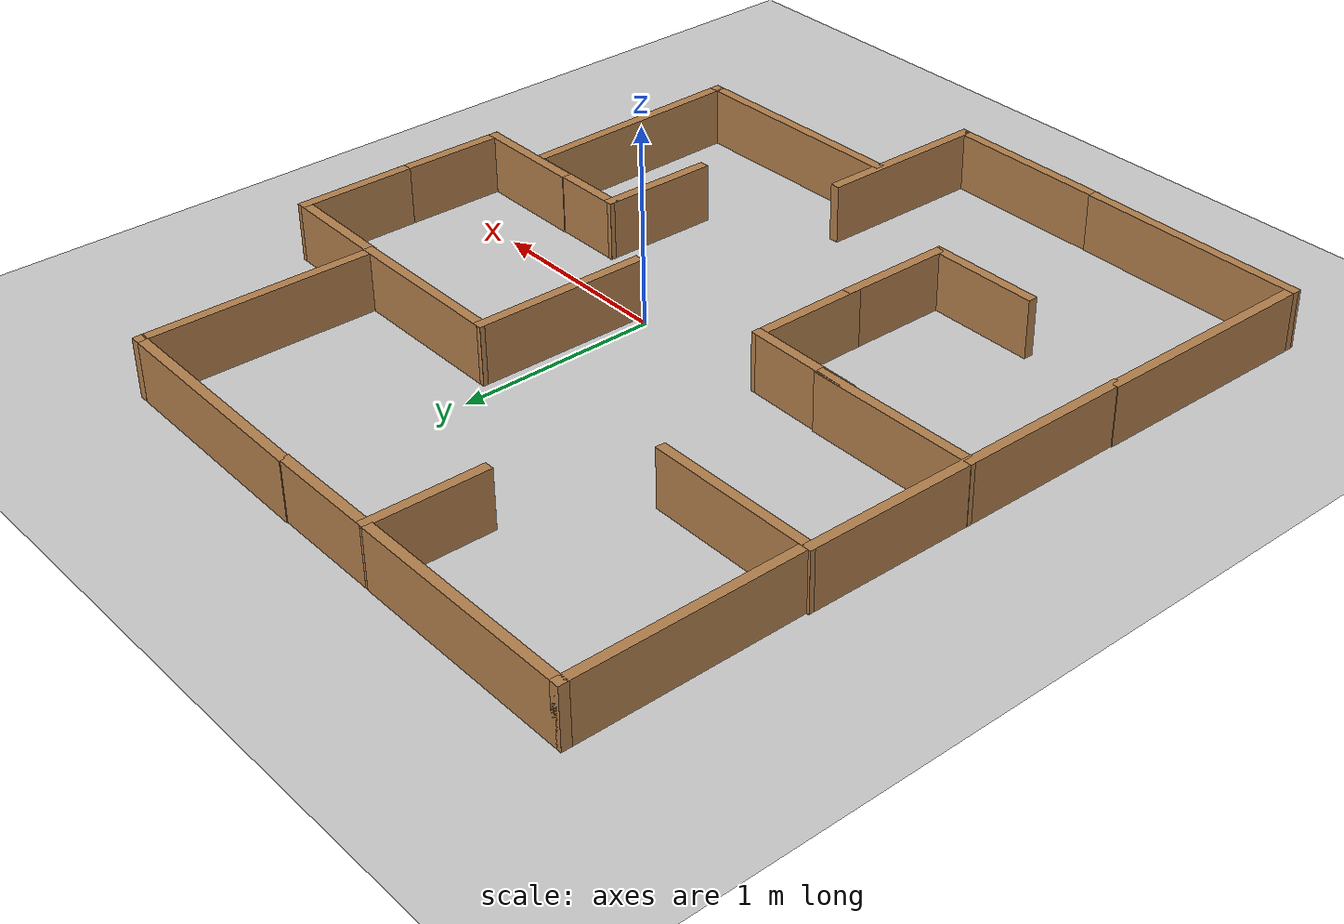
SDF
<sdf version="1.7">
 <world name="default">
  <light name="sun" type="directional">
   <pose>0 0 10 0 -0 0</pose>
   <diffuse>0.8 0.8 0.8 1</diffuse>
   <specular>0.2 0.2 0.2 1</specular>
   <attenuation>
    <range>1000</range>
    <constant>0.9</constant>
    <linear>0.01</linear>
    <quadratic>0.001</quadratic>
   </attenuation>
   <direction>-0.5 0.1 -0.9</direction>
   <spot><inner_angle>0</inner_angle><outer_angle>0</outer_angle><falloff>0</falloff></spot>
  </light>
  <model name="ground_plane">
   <static>1</static>
   <link name="link">
    <collision name="collision">
     <geometry><plane><normal>0 0 1</normal><size>100 100</size></plane></geometry>
     <surface>
      <contact><collide_bitmask>65535</collide_bitmask></contact>
      <friction><ode><mu>100</mu><mu2>50</mu2></ode></friction>
     </surface>
    </collision>
    <visual name="visual">
     <cast_shadows>0</cast_shadows>
     <geometry><plane><normal>0 0 1</normal><size>100 100</size></plane></geometry>
     <material>
      <script><uri>file://media/materials/scripts/gazebo.material</uri><name>Gazebo/Grey</name></script>
     </material>
    </visual>
   </link>
  </model>
  <gravity>0 0 -9.8</gravity>
  <magnetic_field>6e-06 2.3e-05 -4.2e-05</magnetic_field>
  <atmosphere type="adiabatic"/>
  <physics type="ode">
   <max_step_size>0.001</max_step_size>
   <real_time_factor>1</real_time_factor>
   <real_time_update_rate>1000</real_time_update_rate>
  </physics>
  <scene><ambient>0.4 0.4 0.4 1</ambient><background>0.7 0.7 0.7 1</background><shadows>1</shadows></scene>
  <spherical_coordinates>
   <surface_model>EARTH_WGS84</surface_model>
   <latitude_deg>0</latitude_deg>
   <longitude_deg>0</longitude_deg>
   <elevation>0</elevation>
   <heading_deg>0</heading_deg>
  </spherical_coordinates>
  <model name="corner120">
   <pose>-1.03557 3.29318 0 0 -0 0</pose>
   <link name="Wall_29">
    <collision name="Wall_29_Collision">
     <geometry><box><size>1.2087 0.05 0.3</size></box></geometry>
     <pose>0 0 0.15 0 -0 0</pose>
    </collision>
    <visual name="Wall_29_Visual">
     <pose>0 0 0.15 0 -0 0</pose>
     <geometry><box><size>1.2087 0.05 0.3</size></box></geometry>
     <material>
      <script><uri>file://media/materials/scripts/gazebo.material</uri><name>Gazebo/Wood</name></script>
      <ambient>1 1 1 1</ambient>
     </material>
     <meta><layer>0</layer></meta>
    </visual>
    <pose>-0.368152 -1.2825 0 0 -0 0</pose>
   </link>
   <link name="Wall_34">
    <collision name="Wall_34_Collision">
     <geometry><box><size>1.2 0.05 0.3</size></box></geometry>
     <pose>0 0 0.15 0 -0 0</pose>
    </collision>
    <visual name="Wall_34_Visual">
     <pose>0 0 0.15 0 -0 0</pose>
     <geometry><box><size>1.2 0.05 0.3</size></box></geometry>
     <material>
      <script><uri>file://media/materials/scripts/gazebo.material</uri><name>Gazebo/Wood</name></script>
      <ambient>1 1 1 1</ambient>
     </material>
     <meta><layer>0</layer></meta>
    </visual>
    <pose>-0.9475 -1.8575 0 0 -0 -1.5708</pose>
   </link>
   <static>1</static>
  </model>
  <model name="corner90">
   <pose>-1.05693 2.27449 0 0 -0 0</pose>
   <link name="Wall_29">
    <collision name="Wall_29_Collision">
     <geometry><box><size>0.9 0.05 0.3</size></box></geometry>
     <pose>0 0 0.15 0 -0 0</pose>
    </collision>
    <visual name="Wall_29_Visual">
     <pose>0 0 0.15 0 -0 0</pose>
     <geometry><box><size>0.9 0.05 0.3</size></box></geometry>
     <material>
      <script><uri>file://media/materials/scripts/gazebo.material</uri><name>Gazebo/Wood</name></script>
      <ambient>1 1 1 1</ambient>
     </material>
     <meta><layer>0</layer></meta>
    </visual>
    <pose>-0.513677 -1.4324 0 0 -0 0</pose>
   </link>
   <link name="Wall_34">
    <collision name="Wall_34_Collision">
     <geometry><box><size>0.9 0.05 0.3</size></box></geometry>
     <pose>0 0 0.15 0 -0 0</pose>
    </collision>
    <visual name="Wall_34_Visual">
     <pose>0 0 0.15 0 -0 0</pose>
     <geometry><box><size>0.9 0.05 0.3</size></box></geometry>
     <material>
      <script><uri>file://media/materials/scripts/gazebo.material</uri><name>Gazebo/Wood</name></script>
      <ambient>1 1 1 1</ambient>
     </material>
     <meta><layer>0</layer></meta>
    </visual>
    <pose>-0.943025 -1.85737 0 0 -0 -1.58103</pose>
   </link>
   <static>1</static>
  </model>
  <model name="corner60">
   <pose>0.15707 3.59145 0 0 -0 0</pose>
   <link name="Wall_29">
    <collision name="Wall_29_Collision">
     <geometry><box><size>0.6 0.05 0.3</size></box></geometry>
     <pose>0 0 0.15 0 -0 0</pose>
    </collision>
    <visual name="Wall_29_Visual">
     <pose>0 0 0.15 0 -0 0</pose>
     <geometry><box><size>0.6 0.05 0.3</size></box></geometry>
     <material>
      <script><uri>file://media/materials/scripts/gazebo.material</uri><name>Gazebo/Wood</name></script>
      <ambient>1 1 1 1</ambient>
     </material>
     <meta><layer>0</layer></meta>
    </visual>
    <pose>-0.665212 -1.58239 0 0 -0 0</pose>
   </link>
   <link name="Wall_34">
    <collision name="Wall_34_Collision">
     <geometry><box><size>0.6 0.05 0.3</size></box></geometry>
     <pose>0 0 0.15 0 -0 0</pose>
    </collision>
    <visual name="Wall_34_Visual">
     <pose>0 0 0.15 0 -0 0</pose>
     <geometry><box><size>0.6 0.05 0.3</size></box></geometry>
     <material>
      <script><uri>file://media/materials/scripts/gazebo.material</uri><name>Gazebo/Wood</name></script>
      <ambient>1 1 1 1</ambient>
     </material>
     <meta><layer>0</layer></meta>
    </visual>
    <pose>-0.943025 -1.85737 0 0 -0 -1.58103</pose>
   </link>
   <static>1</static>
  </model>
  <model name="corner120_0">
   <pose>2.22137 1.03655 0 0 0 -1.58285</pose>
   <link name="Wall_29">
    <collision name="Wall_29_Collision">
     <geometry><box><size>1.2087 0.05 0.3</size></box></geometry>
     <pose>0 0 0.15 0 -0 0</pose>
    </collision>
    <visual name="Wall_29_Visual">
     <pose>0 0 0.15 0 -0 0</pose>
     <geometry><box><size>1.2087 0.05 0.3</size></box></geometry>
     <material>
      <script><uri>file://media/materials/scripts/gazebo.material</uri><name>Gazebo/Wood</name></script>
      <ambient>1 1 1 1</ambient>
     </material>
     <meta><layer>0</layer></meta>
    </visual>
    <pose>-0.368152 -1.2825 0 0 -0 0</pose>
   </link>
   <link name="Wall_34">
    <collision name="Wall_34_Collision">
     <geometry><box><size>1.2 0.05 0.3</size></box></geometry>
     <pose>0 0 0.15 0 -0 0</pose>
    </collision>
    <visual name="Wall_34_Visual">
     <pose>0 0 0.15 0 -0 0</pose>
     <geometry><box><size>1.2 0.05 0.3</size></box></geometry>
     <material>
      <script><uri>file://media/materials/scripts/gazebo.material</uri><name>Gazebo/Wood</name></script>
      <ambient>1 1 1 1</ambient>
     </material>
     <meta><layer>0</layer></meta>
    </visual>
    <pose>-0.9475 -1.8575 0 0 -0 -1.5708</pose>
   </link>
   <static>1</static>
  </model>
  <model name="corner90_0">
   <pose>1.0294 2.26792 0 0 -0 0</pose>
   <link name="Wall_29">
    <collision name="Wall_29_Collision">
     <geometry><box><size>0.9 0.05 0.3</size></box></geometry>
     <pose>0 0 0.15 0 -0 0</pose>
    </collision>
    <visual name="Wall_29_Visual">
     <pose>0 0 0.15 0 -0 0</pose>
     <geometry><box><size>0.9 0.05 0.3</size></box></geometry>
     <material>
      <script><uri>file://media/materials/scripts/gazebo.material</uri><name>Gazebo/Wood</name></script>
      <ambient>1 1 1 1</ambient>
     </material>
     <meta><layer>0</layer></meta>
    </visual>
    <pose>-0.513677 -1.4324 0 0 -0 0</pose>
   </link>
   <link name="Wall_34">
    <collision name="Wall_34_Collision">
     <geometry><box><size>0.9 0.05 0.3</size></box></geometry>
     <pose>0 0 0.15 0 -0 0</pose>
    </collision>
    <visual name="Wall_34_Visual">
     <pose>0 0 0.15 0 -0 0</pose>
     <geometry><box><size>0.9 0.05 0.3</size></box></geometry>
     <material>
      <script><uri>file://media/materials/scripts/gazebo.material</uri><name>Gazebo/Wood</name></script>
      <ambient>1 1 1 1</ambient>
     </material>
     <meta><layer>0</layer></meta>
    </visual>
    <pose>-0.943025 -1.85737 0 0 -0 -1.58103</pose>
   </link>
   <static>1</static>
  </model>
  <model name="corner60_0">
   <pose>3.08603 -0.122215 0 0 0 -1.57521</pose>
   <link name="Wall_29">
    <collision name="Wall_29_Collision">
     <geometry><box><size>0.6 0.05 0.3</size></box></geometry>
     <pose>0 0 0.15 0 -0 0</pose>
    </collision>
    <visual name="Wall_29_Visual">
     <pose>0 0 0.15 0 -0 0</pose>
     <geometry><box><size>0.6 0.05 0.3</size></box></geometry>
     <material>
      <script><uri>file://media/materials/scripts/gazebo.material</uri><name>Gazebo/Wood</name></script>
      <ambient>1 1 1 1</ambient>
     </material>
     <meta><layer>0</layer></meta>
    </visual>
    <pose>-0.665212 -1.58239 0 0 -0 0</pose>
   </link>
   <link name="Wall_34">
    <collision name="Wall_34_Collision">
     <geometry><box><size>0.6 0.05 0.3</size></box></geometry>
     <pose>0 0 0.15 0 -0 0</pose>
    </collision>
    <visual name="Wall_34_Visual">
     <pose>0 0 0.15 0 -0 0</pose>
     <geometry><box><size>0.6 0.05 0.3</size></box></geometry>
     <material>
      <script><uri>file://media/materials/scripts/gazebo.material</uri><name>Gazebo/Wood</name></script>
      <ambient>1 1 1 1</ambient>
     </material>
     <meta><layer>0</layer></meta>
    </visual>
    <pose>-0.943025 -1.85737 0 0 -0 -1.58103</pose>
   </link>
   <static>1</static>
  </model>
  <model name="corner60_1">
   <pose>0.554469 -1.85509 0 0 -0 3.139</pose>
   <link name="Wall_29">
    <collision name="Wall_29_Collision">
     <geometry><box><size>0.6 0.05 0.3</size></box></geometry>
     <pose>0 0 0.15 0 -0 0</pose>
    </collision>
    <visual name="Wall_29_Visual">
     <pose>0 0 0.15 0 -0 0</pose>
     <geometry><box><size>0.6 0.05 0.3</size></box></geometry>
     <material>
      <script><uri>file://media/materials/scripts/gazebo.material</uri><name>Gazebo/Wood</name></script>
      <ambient>1 1 1 1</ambient>
     </material>
     <meta><layer>0</layer></meta>
    </visual>
    <pose>-0.665212 -1.58239 0 0 -0 0</pose>
   </link>
   <link name="Wall_34">
    <collision name="Wall_34_Collision">
     <geometry><box><size>0.6 0.05 0.3</size></box></geometry>
     <pose>0 0 0.15 0 -0 0</pose>
    </collision>
    <visual name="Wall_34_Visual">
     <pose>0 0 0.15 0 -0 0</pose>
     <geometry><box><size>0.6 0.05 0.3</size></box></geometry>
     <material>
      <script><uri>file://media/materials/scripts/gazebo.material</uri><name>Gazebo/Wood</name></script>
      <ambient>1 1 1 1</ambient>
     </material>
     <meta><layer>0</layer></meta>
    </visual>
    <pose>-0.943025 -1.85737 0 0 -0 -1.58103</pose>
   </link>
   <static>1</static>
  </model>
  <model name="corner60_2">
   <pose>1.52469 1.30494 0 0 -0 0</pose>
   <link name="Wall_29">
    <collision name="Wall_29_Collision">
     <geometry><box><size>0.6 0.05 0.3</size></box></geometry>
     <pose>0 0 0.15 0 -0 0</pose>
    </collision>
    <visual name="Wall_29_Visual">
     <pose>0 0 0.15 0 -0 0</pose>
     <geometry><box><size>0.6 0.05 0.3</size></box></geometry>
     <material>
      <script><uri>file://media/materials/scripts/gazebo.material</uri><name>Gazebo/Wood</name></script>
      <ambient>1 1 1 1</ambient>
     </material>
     <meta><layer>0</layer></meta>
    </visual>
    <pose>-0.665212 -1.58239 0 0 -0 0</pose>
   </link>
   <link name="Wall_34">
    <collision name="Wall_34_Collision">
     <geometry><box><size>0.6 0.05 0.3</size></box></geometry>
     <pose>0 0 0.15 0 -0 0</pose>
    </collision>
    <visual name="Wall_34_Visual">
     <pose>0 0 0.15 0 -0 0</pose>
     <geometry><box><size>0.6 0.05 0.3</size></box></geometry>
     <material>
      <script><uri>file://media/materials/scripts/gazebo.material</uri><name>Gazebo/Wood</name></script>
      <ambient>1 1 1 1</ambient>
     </material>
     <meta><layer>0</layer></meta>
    </visual>
    <pose>-0.943025 -1.85737 0 0 -0 -1.58103</pose>
   </link>
   <static>1</static>
  </model>
  <model name="corner120_1">
   <pose>0.247815 -2.75319 0 0 -0 -3.12621</pose>
   <link name="Wall_29">
    <collision name="Wall_29_Collision">
     <geometry><box><size>1.2087 0.05 0.3</size></box></geometry>
     <pose>0 0 0.15 0 -0 0</pose>
    </collision>
    <visual name="Wall_29_Visual">
     <pose>0 0 0.15 0 -0 0</pose>
     <geometry><box><size>1.2087 0.05 0.3</size></box></geometry>
     <material>
      <script><uri>file://media/materials/scripts/gazebo.material</uri><name>Gazebo/Wood</name></script>
      <ambient>1 1 1 1</ambient>
     </material>
     <meta><layer>0</layer></meta>
    </visual>
    <pose>-0.368152 -1.2825 0 0 -0 0</pose>
   </link>
   <link name="Wall_34">
    <collision name="Wall_34_Collision">
     <geometry><box><size>1.2 0.05 0.3</size></box></geometry>
     <pose>0 0 0.15 0 -0 0</pose>
    </collision>
    <visual name="Wall_34_Visual">
     <pose>0 0 0.15 0 -0 0</pose>
     <geometry><box><size>1.2 0.05 0.3</size></box></geometry>
     <material>
      <script><uri>file://media/materials/scripts/gazebo.material</uri><name>Gazebo/Wood</name></script>
      <ambient>1 1 1 1</ambient>
     </material>
     <meta><layer>0</layer></meta>
    </visual>
    <pose>-0.9475 -1.8575 0 0 -0 -1.5708</pose>
   </link>
   <static>1</static>
  </model>
  <model name="corner90_1">
   <pose>-1.06689 1.42551 0 0 -0 0</pose>
   <link name="Wall_29">
    <collision name="Wall_29_Collision">
     <geometry><box><size>0.9 0.05 0.3</size></box></geometry>
     <pose>0 0 0.15 0 -0 0</pose>
    </collision>
    <visual name="Wall_29_Visual">
     <pose>0 0 0.15 0 -0 0</pose>
     <geometry><box><size>0.9 0.05 0.3</size></box></geometry>
     <material>
      <script><uri>file://media/materials/scripts/gazebo.material</uri><name>Gazebo/Wood</name></script>
      <ambient>1 1 1 1</ambient>
     </material>
     <meta><layer>0</layer></meta>
    </visual>
    <pose>-0.513677 -1.4324 0 0 -0 0</pose>
   </link>
   <link name="Wall_34">
    <collision name="Wall_34_Collision">
     <geometry><box><size>0.9 0.05 0.3</size></box></geometry>
     <pose>0 0 0.15 0 -0 0</pose>
    </collision>
    <visual name="Wall_34_Visual">
     <pose>0 0 0.15 0 -0 0</pose>
     <geometry><box><size>0.9 0.05 0.3</size></box></geometry>
     <material>
      <script><uri>file://media/materials/scripts/gazebo.material</uri><name>Gazebo/Wood</name></script>
      <ambient>1 1 1 1</ambient>
     </material>
     <meta><layer>0</layer></meta>
    </visual>
    <pose>-0.943025 -1.85737 0 0 -0 -1.58103</pose>
   </link>
   <static>1</static>
  </model>
  <model name="corner120_2">
   <pose>-3.30494 -1.06094 0 0 -0 1.55709</pose>
   <link name="Wall_29">
    <collision name="Wall_29_Collision">
     <geometry><box><size>1.2087 0.05 0.3</size></box></geometry>
     <pose>0 0 0.15 0 -0 0</pose>
    </collision>
    <visual name="Wall_29_Visual">
     <pose>0 0 0.15 0 -0 0</pose>
     <geometry><box><size>1.2087 0.05 0.3</size></box></geometry>
     <material>
      <script><uri>file://media/materials/scripts/gazebo.material</uri><name>Gazebo/Wood</name></script>
      <ambient>1 1 1 1</ambient>
     </material>
     <meta><layer>0</layer></meta>
    </visual>
    <pose>-0.368152 -1.2825 0 0 -0 0</pose>
   </link>
   <link name="Wall_34">
    <collision name="Wall_34_Collision">
     <geometry><box><size>1.2 0.05 0.3</size></box></geometry>
     <pose>0 0 0.15 0 -0 0</pose>
    </collision>
    <visual name="Wall_34_Visual">
     <pose>0 0 0.15 0 -0 0</pose>
     <geometry><box><size>1.2 0.05 0.3</size></box></geometry>
     <material>
      <script><uri>file://media/materials/scripts/gazebo.material</uri><name>Gazebo/Wood</name></script>
      <ambient>1 1 1 1</ambient>
     </material>
     <meta><layer>0</layer></meta>
    </visual>
    <pose>-0.9475 -1.8575 0 0 -0 -1.5708</pose>
   </link>
   <static>1</static>
  </model>
  <model name="corner90_2">
   <pose>-0.963109 -3.47645 0 0 -0 3.13507</pose>
   <link name="Wall_29">
    <collision name="Wall_29_Collision">
     <geometry><box><size>0.9 0.05 0.3</size></box></geometry>
     <pose>0 0 0.15 0 -0 0</pose>
    </collision>
    <visual name="Wall_29_Visual">
     <pose>0 0 0.15 0 -0 0</pose>
     <geometry><box><size>0.9 0.05 0.3</size></box></geometry>
     <material>
      <script><uri>file://media/materials/scripts/gazebo.material</uri><name>Gazebo/Wood</name></script>
      <ambient>1 1 1 1</ambient>
     </material>
     <meta><layer>0</layer></meta>
    </visual>
    <pose>-0.513677 -1.4324 0 0 -0 0</pose>
   </link>
   <link name="Wall_34">
    <collision name="Wall_34_Collision">
     <geometry><box><size>0.9 0.05 0.3</size></box></geometry>
     <pose>0 0 0.15 0 -0 0</pose>
    </collision>
    <visual name="Wall_34_Visual">
     <pose>0 0 0.15 0 -0 0</pose>
     <geometry><box><size>0.9 0.05 0.3</size></box></geometry>
     <material>
      <script><uri>file://media/materials/scripts/gazebo.material</uri><name>Gazebo/Wood</name></script>
      <ambient>1 1 1 1</ambient>
     </material>
     <meta><layer>0</layer></meta>
    </visual>
    <pose>-0.943025 -1.85737 0 0 -0 -1.58103</pose>
   </link>
   <static>1</static>
  </model>
  <model name="corner60_3">
   <pose>0.828283 -0.965551 0 0 0 -1.57435</pose>
   <link name="Wall_29">
    <collision name="Wall_29_Collision">
     <geometry><box><size>0.6 0.05 0.3</size></box></geometry>
     <pose>0 0 0.15 0 -0 0</pose>
    </collision>
    <visual name="Wall_29_Visual">
     <pose>0 0 0.15 0 -0 0</pose>
     <geometry><box><size>0.6 0.05 0.3</size></box></geometry>
     <material>
      <script><uri>file://media/materials/scripts/gazebo.material</uri><name>Gazebo/Wood</name></script>
      <ambient>1 1 1 1</ambient>
     </material>
     <meta><layer>0</layer></meta>
    </visual>
    <pose>-0.665212 -1.58239 0 0 -0 0</pose>
   </link>
   <link name="Wall_34">
    <collision name="Wall_34_Collision">
     <geometry><box><size>0.6 0.05 0.3</size></box></geometry>
     <pose>0 0 0.15 0 -0 0</pose>
    </collision>
    <visual name="Wall_34_Visual">
     <pose>0 0 0.15 0 -0 0</pose>
     <geometry><box><size>0.6 0.05 0.3</size></box></geometry>
     <material>
      <script><uri>file://media/materials/scripts/gazebo.material</uri><name>Gazebo/Wood</name></script>
      <ambient>1 1 1 1</ambient>
     </material>
     <meta><layer>0</layer></meta>
    </visual>
    <pose>-0.943025 -1.85737 0 0 -0 -1.58103</pose>
   </link>
   <static>1</static>
  </model>
  <model name="corner60_4">
   <pose>-1.70721 -2.68545 0 0 -0 3.13722</pose>
   <link name="Wall_29">
    <collision name="Wall_29_Collision">
     <geometry><box><size>0.6 0.05 0.3</size></box></geometry>
     <pose>0 0 0.15 0 -0 0</pose>
    </collision>
    <visual name="Wall_29_Visual">
     <pose>0 0 0.15 0 -0 0</pose>
     <geometry><box><size>0.6 0.05 0.3</size></box></geometry>
     <material>
      <script><uri>file://media/materials/scripts/gazebo.material</uri><name>Gazebo/Wood</name></script>
      <ambient>1 1 1 1</ambient>
     </material>
     <meta><layer>0</layer></meta>
    </visual>
    <pose>-0.665212 -1.58239 0 0 -0 0</pose>
   </link>
   <link name="Wall_34">
    <collision name="Wall_34_Collision">
     <geometry><box><size>0.6 0.05 0.3</size></box></geometry>
     <pose>0 0 0.15 0 -0 0</pose>
    </collision>
    <visual name="Wall_34_Visual">
     <pose>0 0 0.15 0 -0 0</pose>
     <geometry><box><size>0.6 0.05 0.3</size></box></geometry>
     <material>
      <script><uri>file://media/materials/scripts/gazebo.material</uri><name>Gazebo/Wood</name></script>
      <ambient>1 1 1 1</ambient>
     </material>
     <meta><layer>0</layer></meta>
    </visual>
    <pose>-0.943025 -1.85737 0 0 -0 -1.58103</pose>
   </link>
   <static>1</static>
  </model>
 </world>
</sdf>
